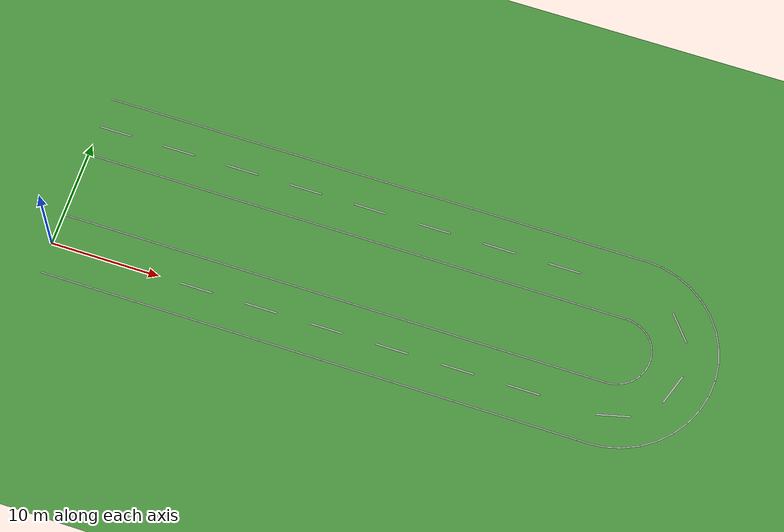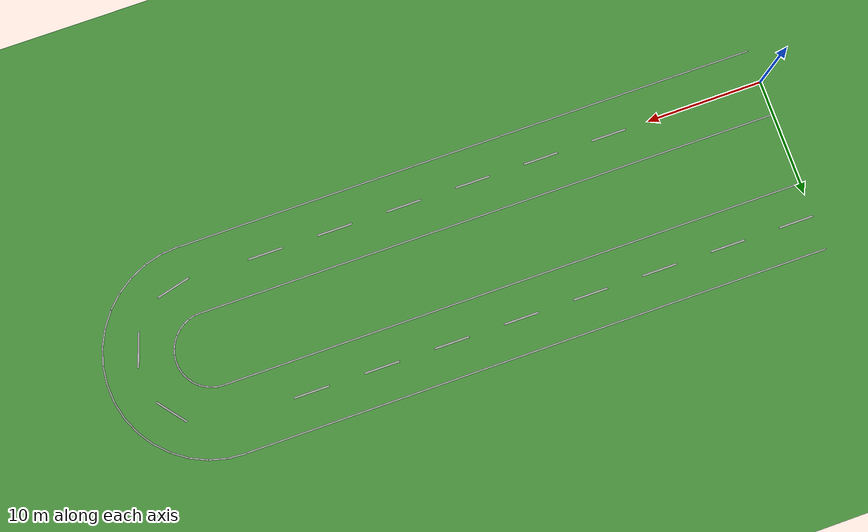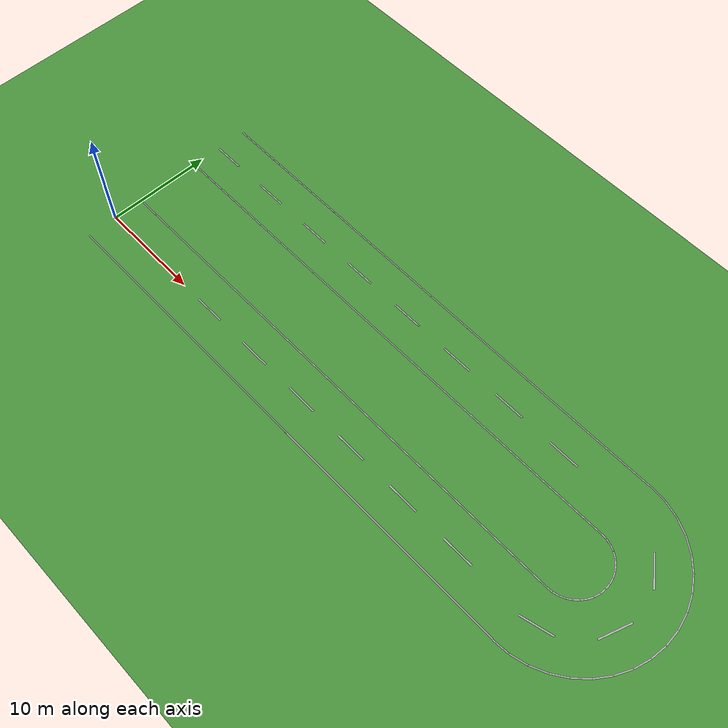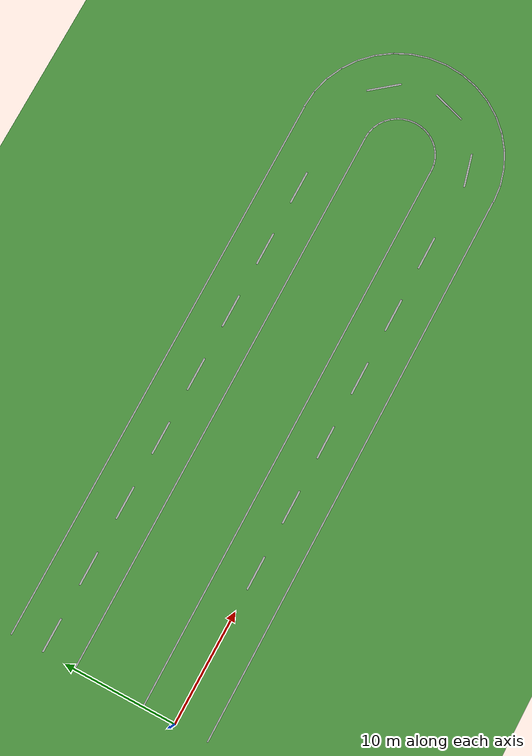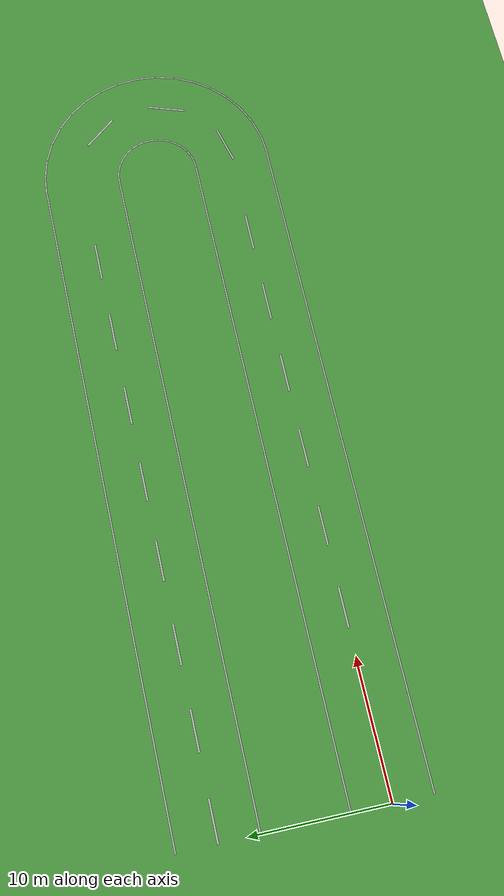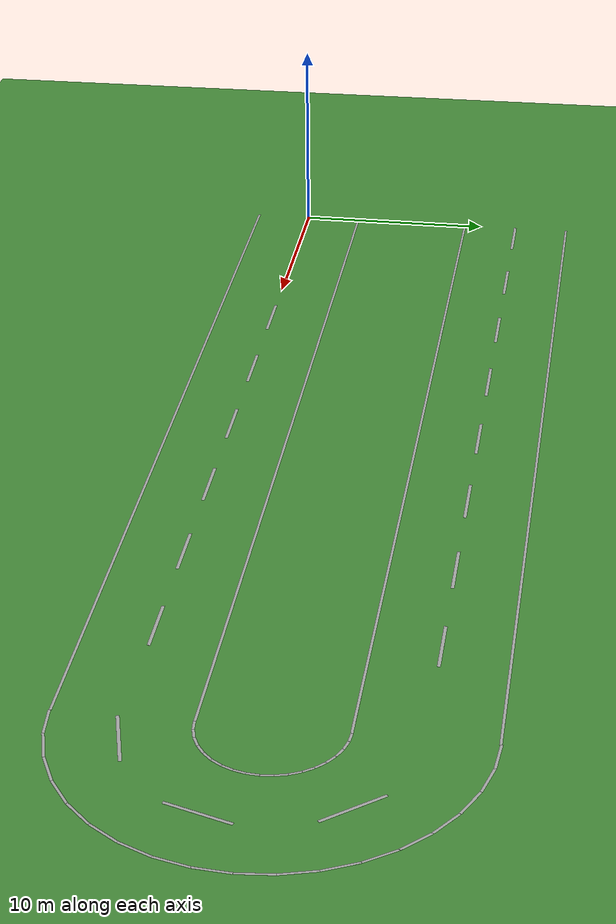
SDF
<sdf version="1.6">
 <world name="uturn_test_track">
  <include><uri>model://sun</uri></include>
  <model name="grass_plane">
   <static>true</static>
   <link name="link">
    <visual name="visual">
     <cast_shadows>false</cast_shadows>
     <geometry><plane><normal>0 0 1</normal><size>200 200</size></plane></geometry>
     <material>
      <script><uri>file://media/materials/scripts/gazebo.material</uri><name>Gazebo/Grass</name></script>
     </material>
    </visual>
    <collision name="collision">
     <geometry><plane><normal>0 0 1</normal><size>200 200</size></plane></geometry>
    </collision>
   </link>
  </model>
  <model name="road_markings">
   <static>true</static>
   <link name="markings_link">
    <visual name="out_line_right">
     <pose>25 -2.9 0.02 0 0 0</pose>
     <geometry><box><size>50 0.12 0.001</size></box></geometry>
     <material><emissive>1 1 1 1</emissive></material>
    </visual>
    <visual name="out_line_left">
     <pose>25 2.9 0.02 0 0 0</pose>
     <geometry><box><size>50 0.12 0.001</size></box></geometry>
     <material><emissive>1 1 1 1</emissive></material>
    </visual>
    <visual name="ret_line_right">
     <pose>25 9.1 0.02 0 0 0</pose>
     <geometry><box><size>50 0.12 0.001</size></box></geometry>
     <material><emissive>1 1 1 1</emissive></material>
    </visual>
    <visual name="ret_line_left">
     <pose>25 14.9 0.02 0 0 0</pose>
     <geometry><box><size>50 0.12 0.001</size></box></geometry>
     <material><emissive>1 1 1 1</emissive></material>
    </visual>
    <visual name="yellow_out_0">
     <pose>1.500 0 0.021 0 0 0</pose>
     <geometry><box><size>3.0 0.15 0.001</size></box></geometry>
     <material><emissive>1 0.8 0 1</emissive></material>
    </visual>
    <visual name="yellow_ret_0">
     <pose>1.500 12 0.021 0 0 0</pose>
     <geometry><box><size>3.0 0.15 0.001</size></box></geometry>
     <material><emissive>1 0.8 0 1</emissive></material>
    </visual>
    <visual name="yellow_out_1">
     <pose>7.500 0 0.021 0 0 0</pose>
     <geometry><box><size>3.0 0.15 0.001</size></box></geometry>
     <material><emissive>1 0.8 0 1</emissive></material>
    </visual>
    <visual name="yellow_ret_1">
     <pose>7.500 12 0.021 0 0 0</pose>
     <geometry><box><size>3.0 0.15 0.001</size></box></geometry>
     <material><emissive>1 0.8 0 1</emissive></material>
    </visual>
    <visual name="yellow_out_2">
     <pose>13.500 0 0.021 0 0 0</pose>
     <geometry><box><size>3.0 0.15 0.001</size></box></geometry>
     <material><emissive>1 0.8 0 1</emissive></material>
    </visual>
    <visual name="yellow_ret_2">
     <pose>13.500 12 0.021 0 0 0</pose>
     <geometry><box><size>3.0 0.15 0.001</size></box></geometry>
     <material><emissive>1 0.8 0 1</emissive></material>
    </visual>
    <visual name="yellow_out_3">
     <pose>19.500 0 0.021 0 0 0</pose>
     <geometry><box><size>3.0 0.15 0.001</size></box></geometry>
     <material><emissive>1 0.8 0 1</emissive></material>
    </visual>
    <visual name="yellow_ret_3">
     <pose>19.500 12 0.021 0 0 0</pose>
     <geometry><box><size>3.0 0.15 0.001</size></box></geometry>
     <material><emissive>1 0.8 0 1</emissive></material>
    </visual>
    <visual name="yellow_out_4">
     <pose>25.500 0 0.021 0 0 0</pose>
     <geometry><box><size>3.0 0.15 0.001</size></box></geometry>
     <material><emissive>1 0.8 0 1</emissive></material>
    </visual>
    <visual name="yellow_ret_4">
     <pose>25.500 12 0.021 0 0 0</pose>
     <geometry><box><size>3.0 0.15 0.001</size></box></geometry>
     <material><emissive>1 0.8 0 1</emissive></material>
    </visual>
    <visual name="yellow_out_5">
     <pose>31.500 0 0.021 0 0 0</pose>
     <geometry><box><size>3.0 0.15 0.001</size></box></geometry>
     <material><emissive>1 0.8 0 1</emissive></material>
    </visual>
    <visual name="yellow_ret_5">
     <pose>31.500 12 0.021 0 0 0</pose>
     <geometry><box><size>3.0 0.15 0.001</size></box></geometry>
     <material><emissive>1 0.8 0 1</emissive></material>
    </visual>
    <visual name="yellow_out_6">
     <pose>37.500 0 0.021 0 0 0</pose>
     <geometry><box><size>3.0 0.15 0.001</size></box></geometry>
     <material><emissive>1 0.8 0 1</emissive></material>
    </visual>
    <visual name="yellow_ret_6">
     <pose>37.500 12 0.021 0 0 0</pose>
     <geometry><box><size>3.0 0.15 0.001</size></box></geometry>
     <material><emissive>1 0.8 0 1</emissive></material>
    </visual>
    <visual name="yellow_out_7">
     <pose>43.500 0 0.021 0 0 0</pose>
     <geometry><box><size>3.0 0.15 0.001</size></box></geometry>
     <material><emissive>1 0.8 0 1</emissive></material>
    </visual>
    <visual name="yellow_ret_7">
     <pose>43.500 12 0.021 0 0 0</pose>
     <geometry><box><size>3.0 0.15 0.001</size></box></geometry>
     <material><emissive>1 0.8 0 1</emissive></material>
    </visual>
    <visual name="curve_yellow_0">
     <pose>51.484 0.187 0.021 0 0 0.2500</pose>
     <geometry><box><size>3.0 0.15 0.001</size></box></geometry>
     <material><emissive>1 0.8 0 1</emissive></material>
    </visual>
    <visual name="curve_yellow_1">
     <pose>55.694 4.108 0.021 0 0 1.2500</pose>
     <geometry><box><size>3.0 0.15 0.001</size></box></geometry>
     <material><emissive>1 0.8 0 1</emissive></material>
    </visual>
    <visual name="curve_yellow_2">
     <pose>54.668 9.769 0.021 0 0 2.2500</pose>
     <geometry><box><size>3.0 0.15 0.001</size></box></geometry>
     <material><emissive>1 0.8 0 1</emissive></material>
    </visual>
    <visual name="curve_outer_white_0">
     <pose>50.776 -2.866 0.02 0 0 0.0873</pose>
     <geometry><box><size>1.551 0.12 0.001</size></box></geometry>
     <material><emissive>1 1 1 1</emissive></material>
    </visual>
    <visual name="curve_outer_white_1">
     <pose>52.303 -2.597 0.02 0 0 0.2618</pose>
     <geometry><box><size>1.551 0.12 0.001</size></box></geometry>
     <material><emissive>1 1 1 1</emissive></material>
    </visual>
    <visual name="curve_outer_white_2">
     <pose>53.761 -2.066 0.02 0 0 0.4363</pose>
     <geometry><box><size>1.551 0.12 0.001</size></box></geometry>
     <material><emissive>1 1 1 1</emissive></material>
    </visual>
    <visual name="curve_outer_white_3">
     <pose>55.105 -1.290 0.02 0 0 0.6109</pose>
     <geometry><box><size>1.551 0.12 0.001</size></box></geometry>
     <material><emissive>1 1 1 1</emissive></material>
    </visual>
    <visual name="curve_outer_white_4">
     <pose>56.293 -0.293 0.02 0 0 0.7854</pose>
     <geometry><box><size>1.551 0.12 0.001</size></box></geometry>
     <material><emissive>1 1 1 1</emissive></material>
    </visual>
    <visual name="curve_outer_white_5">
     <pose>57.290 0.895 0.02 0 0 0.9599</pose>
     <geometry><box><size>1.551 0.12 0.001</size></box></geometry>
     <material><emissive>1 1 1 1</emissive></material>
    </visual>
    <visual name="curve_outer_white_6">
     <pose>58.066 2.239 0.02 0 0 1.1345</pose>
     <geometry><box><size>1.551 0.12 0.001</size></box></geometry>
     <material><emissive>1 1 1 1</emissive></material>
    </visual>
    <visual name="curve_outer_white_7">
     <pose>58.597 3.697 0.02 0 0 1.3090</pose>
     <geometry><box><size>1.551 0.12 0.001</size></box></geometry>
     <material><emissive>1 1 1 1</emissive></material>
    </visual>
    <visual name="curve_outer_white_8">
     <pose>58.866 5.224 0.02 0 0 1.4835</pose>
     <geometry><box><size>1.551 0.12 0.001</size></box></geometry>
     <material><emissive>1 1 1 1</emissive></material>
    </visual>
    <visual name="curve_outer_white_9">
     <pose>58.866 6.776 0.02 0 0 1.6581</pose>
     <geometry><box><size>1.551 0.12 0.001</size></box></geometry>
     <material><emissive>1 1 1 1</emissive></material>
    </visual>
    <visual name="curve_outer_white_10">
     <pose>58.597 8.303 0.02 0 0 1.8326</pose>
     <geometry><box><size>1.551 0.12 0.001</size></box></geometry>
     <material><emissive>1 1 1 1</emissive></material>
    </visual>
    <visual name="curve_outer_white_11">
     <pose>58.066 9.761 0.02 0 0 2.0071</pose>
     <geometry><box><size>1.551 0.12 0.001</size></box></geometry>
     <material><emissive>1 1 1 1</emissive></material>
    </visual>
    <visual name="curve_outer_white_12">
     <pose>57.290 11.105 0.02 0 0 2.1817</pose>
     <geometry><box><size>1.551 0.12 0.001</size></box></geometry>
     <material><emissive>1 1 1 1</emissive></material>
    </visual>
    <visual name="curve_outer_white_13">
     <pose>56.293 12.293 0.02 0 0 2.3562</pose>
     <geometry><box><size>1.551 0.12 0.001</size></box></geometry>
     <material><emissive>1 1 1 1</emissive></material>
    </visual>
    <visual name="curve_outer_white_14">
     <pose>55.105 13.290 0.02 0 0 2.5307</pose>
     <geometry><box><size>1.551 0.12 0.001</size></box></geometry>
     <material><emissive>1 1 1 1</emissive></material>
    </visual>
    <visual name="curve_outer_white_15">
     <pose>53.761 14.066 0.02 0 0 2.7053</pose>
     <geometry><box><size>1.551 0.12 0.001</size></box></geometry>
     <material><emissive>1 1 1 1</emissive></material>
    </visual>
    <visual name="curve_outer_white_16">
     <pose>52.303 14.597 0.02 0 0 2.8798</pose>
     <geometry><box><size>1.551 0.12 0.001</size></box></geometry>
     <material><emissive>1 1 1 1</emissive></material>
    </visual>
    <visual name="curve_outer_white_17">
     <pose>50.776 14.866 0.02 0 0 3.0543</pose>
     <geometry><box><size>1.551 0.12 0.001</size></box></geometry>
     <material><emissive>1 1 1 1</emissive></material>
    </visual>
    <visual name="curve_inner_white_0">
     <pose>50.270 2.912 0.02 0 0 0.0873</pose>
     <geometry><box><size>0.540 0.12 0.001</size></box></geometry>
     <material><emissive>1 1 1 1</emissive></material>
    </visual>
    <visual name="curve_inner_white_1">
     <pose>50.802 3.006 0.02 0 0 0.2618</pose>
     <geometry><box><size>0.540 0.12 0.001</size></box></geometry>
     <material><emissive>1 1 1 1</emissive></material>
    </visual>
    <visual name="curve_inner_white_2">
     <pose>51.310 3.190 0.02 0 0 0.4363</pose>
     <geometry><box><size>0.540 0.12 0.001</size></box></geometry>
     <material><emissive>1 1 1 1</emissive></material>
    </visual>
    <visual name="curve_inner_white_3">
     <pose>51.778 3.461 0.02 0 0 0.6109</pose>
     <geometry><box><size>0.540 0.12 0.001</size></box></geometry>
     <material><emissive>1 1 1 1</emissive></material>
    </visual>
    <visual name="curve_inner_white_4">
     <pose>52.192 3.808 0.02 0 0 0.7854</pose>
     <geometry><box><size>0.540 0.12 0.001</size></box></geometry>
     <material><emissive>1 1 1 1</emissive></material>
    </visual>
    <visual name="curve_inner_white_5">
     <pose>52.539 4.222 0.02 0 0 0.9599</pose>
     <geometry><box><size>0.540 0.12 0.001</size></box></geometry>
     <material><emissive>1 1 1 1</emissive></material>
    </visual>
    <visual name="curve_inner_white_6">
     <pose>52.810 4.690 0.02 0 0 1.1345</pose>
     <geometry><box><size>0.540 0.12 0.001</size></box></geometry>
     <material><emissive>1 1 1 1</emissive></material>
    </visual>
    <visual name="curve_inner_white_7">
     <pose>52.994 5.198 0.02 0 0 1.3090</pose>
     <geometry><box><size>0.540 0.12 0.001</size></box></geometry>
     <material><emissive>1 1 1 1</emissive></material>
    </visual>
    <visual name="curve_inner_white_8">
     <pose>53.088 5.730 0.02 0 0 1.4835</pose>
     <geometry><box><size>0.540 0.12 0.001</size></box></geometry>
     <material><emissive>1 1 1 1</emissive></material>
    </visual>
    <visual name="curve_inner_white_9">
     <pose>53.088 6.270 0.02 0 0 1.6581</pose>
     <geometry><box><size>0.540 0.12 0.001</size></box></geometry>
     <material><emissive>1 1 1 1</emissive></material>
    </visual>
    <visual name="curve_inner_white_10">
     <pose>52.994 6.802 0.02 0 0 1.8326</pose>
     <geometry><box><size>0.540 0.12 0.001</size></box></geometry>
     <material><emissive>1 1 1 1</emissive></material>
    </visual>
    <visual name="curve_inner_white_11">
     <pose>52.810 7.310 0.02 0 0 2.0071</pose>
     <geometry><box><size>0.540 0.12 0.001</size></box></geometry>
     <material><emissive>1 1 1 1</emissive></material>
    </visual>
    <visual name="curve_inner_white_12">
     <pose>52.539 7.778 0.02 0 0 2.1817</pose>
     <geometry><box><size>0.540 0.12 0.001</size></box></geometry>
     <material><emissive>1 1 1 1</emissive></material>
    </visual>
    <visual name="curve_inner_white_13">
     <pose>52.192 8.192 0.02 0 0 2.3562</pose>
     <geometry><box><size>0.540 0.12 0.001</size></box></geometry>
     <material><emissive>1 1 1 1</emissive></material>
    </visual>
    <visual name="curve_inner_white_14">
     <pose>51.778 8.539 0.02 0 0 2.5307</pose>
     <geometry><box><size>0.540 0.12 0.001</size></box></geometry>
     <material><emissive>1 1 1 1</emissive></material>
    </visual>
    <visual name="curve_inner_white_15">
     <pose>51.310 8.810 0.02 0 0 2.7053</pose>
     <geometry><box><size>0.540 0.12 0.001</size></box></geometry>
     <material><emissive>1 1 1 1</emissive></material>
    </visual>
    <visual name="curve_inner_white_16">
     <pose>50.802 8.994 0.02 0 0 2.8798</pose>
     <geometry><box><size>0.540 0.12 0.001</size></box></geometry>
     <material><emissive>1 1 1 1</emissive></material>
    </visual>
    <visual name="curve_inner_white_17">
     <pose>50.270 9.088 0.02 0 0 3.0543</pose>
     <geometry><box><size>0.540 0.12 0.001</size></box></geometry>
     <material><emissive>1 1 1 1</emissive></material>
    </visual>
   </link>
  </model>
 </world>
</sdf>
